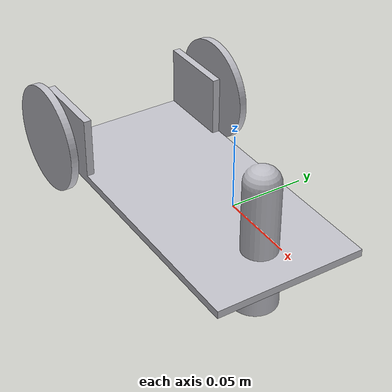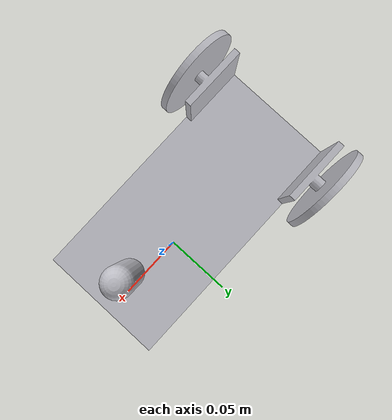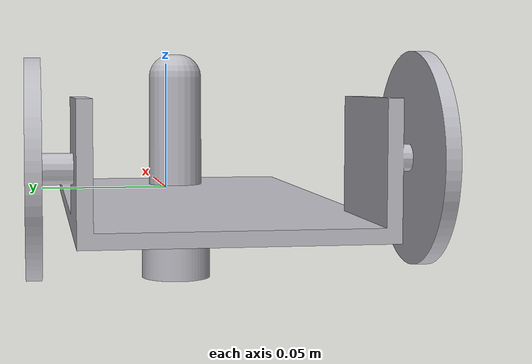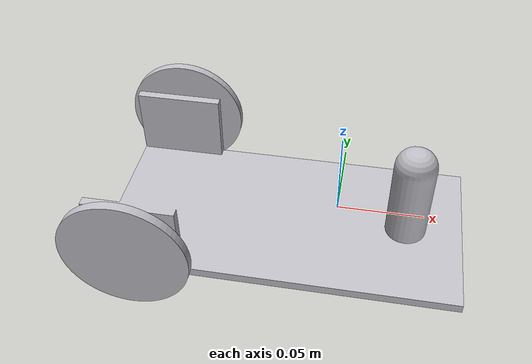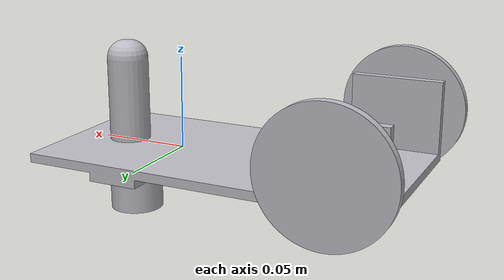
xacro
<?xml version="1.0" ?>
<robot name="robot" xmlns:xacro="http://www.ros.org/wiki/xacro">

<xacro:include filename="$(find robot_description)/urdf/materials.xacro" />
<xacro:include filename="$(find robot_description)/urdf/robot.trans" />
<xacro:include filename="$(find robot_description)/urdf/robot.gazebo" />
<link name="base_link">
  <inertial>
    <origin xyz="-0.01921713598668258 -0.008581552762753814 0.0006247563719333604" rpy="0 0 0"/>
    <mass value="1.3176556778639203"/>
    <inertia ixx="0.001379" iyy="0.005416" izz="0.006211" ixy="5e-06" iyz="-0.0" ixz="0.000119"/>
  </inertial>
  <visual>
    <origin xyz="0 0 0" rpy="0 0 0"/>
    <geometry>
      <mesh filename="package://robot_description/meshes/base_link.stl" scale="0.001 0.001 0.001"/>
    </geometry>
    <material name="silver"/>
  </visual>
  <collision>
    <origin xyz="0 0 0" rpy="0 0 0"/>
    <geometry>
      <mesh filename="package://robot_description/meshes/base_link.stl" scale="0.001 0.001 0.001"/>
    </geometry>
  </collision>
</link>

<link name="Component2_1">
  <inertial>
    <origin xyz="-3.705092822270384e-07 0.0024995511743980264 2.0768747030323886e-07" rpy="0 0 0"/>
    <mass value="0.15105170177541422"/>
    <inertia ixx="4.7e-05" iyy="9.3e-05" izz="4.7e-05" ixy="0.0" iyz="0.0" ixz="-0.0"/>
  </inertial>
  <visual>
    <origin xyz="0.103031 -0.05137 -0.015317" rpy="0 0 0"/>
    <geometry>
      <mesh filename="package://robot_description/meshes/Component2_1.stl" scale="0.001 0.001 0.001"/>
    </geometry>
    <material name="silver"/>
  </visual>
  <collision>
    <origin xyz="0.103031 -0.05137 -0.015317" rpy="0 0 0"/>
    <geometry>
      <mesh filename="package://robot_description/meshes/Component2_1.stl" scale="0.001 0.001 0.001"/>
    </geometry>
  </collision>
</link>

<link name="Component3_1">
  <inertial>
    <origin xyz="-3.7050928215764944e-07 -0.0025004488256052393 2.0768747041252644e-07" rpy="0 0 0"/>
    <mass value="0.15105170177541424"/>
    <inertia ixx="4.7e-05" iyy="9.3e-05" izz="4.7e-05" ixy="0.0" iyz="0.0" ixz="-0.0"/>
  </inertial>
  <visual>
    <origin xyz="0.103031 0.06863 -0.017817" rpy="0 0 0"/>
    <geometry>
      <mesh filename="package://robot_description/meshes/Component3_1.stl" scale="0.001 0.001 0.001"/>
    </geometry>
    <material name="silver"/>
  </visual>
  <collision>
    <origin xyz="0.103031 0.06863 -0.017817" rpy="0 0 0"/>
    <geometry>
      <mesh filename="package://robot_description/meshes/Component3_1.stl" scale="0.001 0.001 0.001"/>
    </geometry>
  </collision>
</link>

<link name="Component4_1">
  <inertial>
    <origin xyz="-3.705092783412578e-07 -4.4882560340693545e-07 -0.009999792312529693" rpy="0 0 0"/>
    <mass value="0.11097676048805949"/>
    <inertia ixx="1e-05" iyy="1e-05" izz="1.2e-05" ixy="0.0" iyz="0.0" ixz="-0.0"/>
  </inertial>
  <visual>
    <origin xyz="-0.036969 0.00863 0.023183" rpy="0 0 0"/>
    <geometry>
      <mesh filename="package://robot_description/meshes/Component4_1.stl" scale="0.001 0.001 0.001"/>
    </geometry>
    <material name="silver"/>
  </visual>
  <collision>
    <origin xyz="-0.036969 0.00863 0.023183" rpy="0 0 0"/>
    <geometry>
      <mesh filename="package://robot_description/meshes/Component4_1.stl" scale="0.001 0.001 0.001"/>
    </geometry>
  </collision>
</link>

<joint name="Rev1" type="continuous">
  <origin xyz="-0.103031 0.05137 0.015317" rpy="0 0 0"/>
  <parent link="base_link"/>
  <child link="Component2_1"/>
  <axis xyz="0.0 1.0 0.0"/>
</joint>

<joint name="Rev2" type="continuous">
  <origin xyz="-0.103031 -0.06863 0.017817" rpy="0 0 0"/>
  <parent link="base_link"/>
  <child link="Component3_1"/>
  <axis xyz="0.0 1.0 0.0"/>
</joint>

<joint name="Rigid3" type="fixed">
  <origin xyz="0.036969 -0.00863 -0.023183" rpy="0 0 0"/>
  <parent link="base_link"/>
  <child link="Component4_1"/>
</joint>

</robot>

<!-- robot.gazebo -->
<robot name="robot" xmlns:xacro="http://www.ros.org/wiki/xacro" >

<xacro:property name="body_color" value="Gazebo/Silver" />

<gazebo>
  <plugin name="control" filename="libgazebo_ros_control.so"/>
</gazebo>
<gazebo reference="base_link">
  <material>${body_color}</material>
  <mu1>3500</mu1>
  <mu2>3500</mu2>
  <selfCollide>true</selfCollide>
  <gravity>true</gravity>
</gazebo>

<gazebo reference="Component2_1">
  <material>${body_color}</material>
  <mu1>3500</mu1>
  <mu2>3500</mu2>
  <selfCollide>true</selfCollide>
</gazebo>

<gazebo reference="Component3_1">
  <material>${body_color}</material>
  <mu1>3500</mu1>
  <mu2>3500</mu2>
  <selfCollide>true</selfCollide>
</gazebo>

<gazebo reference="Component4_1">
  <material>${body_color}</material>
  <mu1>0.2</mu1>
  <mu2>0.2</mu2>
  <selfCollide>true</selfCollide>
</gazebo>
  <gazebo>
  <plugin name="differential_drive_controller" filename="libgazebo_ros_diff_drive.so">

    <!-- Plugin update rate in Hz -->
    <updateRate>${1000}</updateRate>

    <!-- Name of left joint, defaults to `left_joint` -->
    <leftJoint>Rev1</leftJoint>

    <!-- Name of right joint, defaults to `right_joint` -->
    <rightJoint>Rev2</rightJoint>

    <!-- The distance from the center of one wheel to the other, in meters, defaults to 0.34 m -->
    <wheelSeparation>0.5380</wheelSeparation>

    <!-- Diameter of the wheels, in meters, defaults to 0.15 m -->
    <wheelDiameter>0.2410</wheelDiameter>

    <!-- Wheel acceleration, in rad/s^2, defaults to 0.0 rad/s^2 -->
    <wheelAcceleration>1.0</wheelAcceleration>

    <!-- Maximum torque which the wheels can produce, in Nm, defaults to 5 Nm -->
    <wheelTorque>20</wheelTorque>

    <!-- Topic to receive geometry_msgs/Twist message commands, defaults to `cmd_vel` -->
    <commandTopic>cmd_vel</commandTopic>

    <!-- Topic to publish nav_msgs/Odometry messages, defaults to `odom` -->
    <odometryTopic>odom</odometryTopic>

    <!-- Odometry frame, defaults to `odom` -->
    <odometryFrame>odom</odometryFrame>

    <!-- Robot frame to calculate odometry from, defaults to `base_footprint` -->
    <robotBaseFrame>base_footprint</robotBaseFrame>

    <!-- Odometry source, 0 for ENCODER, 1 for WORLD, defaults to WORLD -->
    <odometrySource>1</odometrySource>

    <!-- Set to true to publish transforms for the wheel links, defaults to false -->
    <publishWheelTF>true</publishWheelTF>

    <!-- Set to true to publish transforms for the odometry, defaults to true -->
    <publishOdom>true</publishOdom>

    <!-- Set to true to publish sensor_msgs/JointState on /joint_states for the wheel joints, defaults to false -->
    <publishWheelJointState>true</publishWheelJointState>

    <!-- Set to true to swap right and left wheels, defaults to true -->
    <legacyMode>false</legacyMode>
  </plugin>
</gazebo>

</robot>
